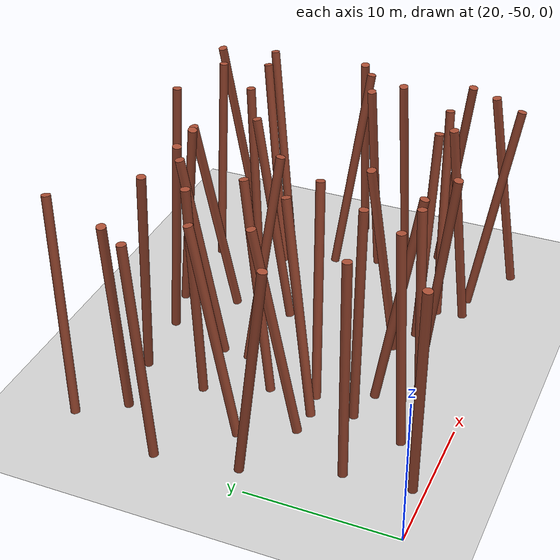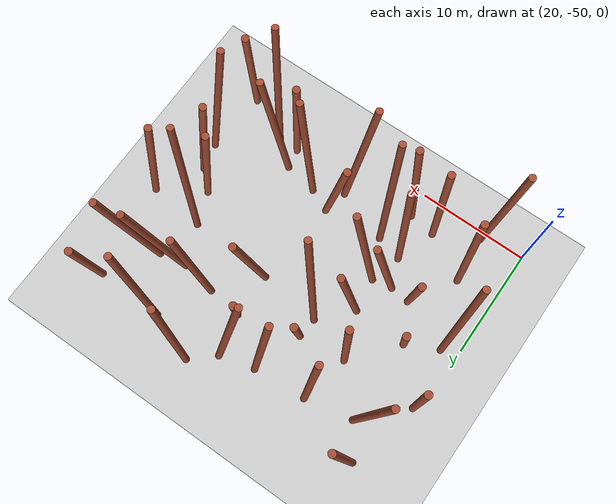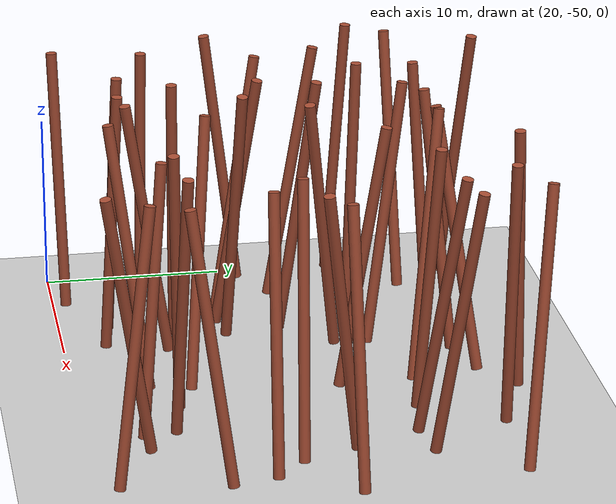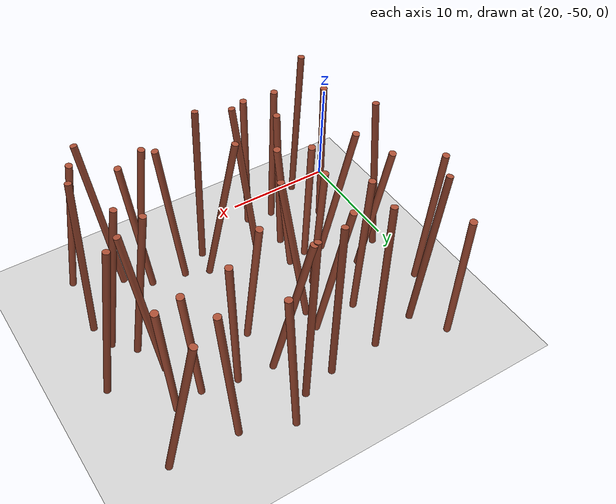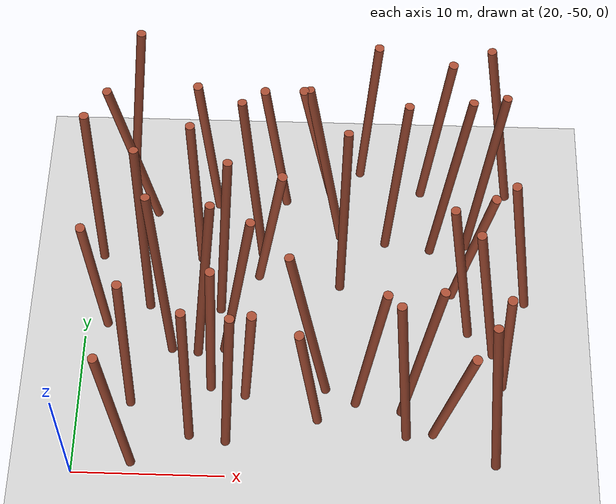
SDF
<sdf version="1.5">
 <world name="default">
  <include><uri>model://sun</uri></include>
  <include><uri>model://ground_plane</uri></include>
  <include><uri>model://asphalt_plane</uri><pose>0 0 -0.000001 0 0 0</pose></include>
  <model name="unit_cylinder_98">
   <pose>21.46546 -39.95861 7.70000 0.11935 0.00171 0.00000</pose>
   <gravity>0 0 0</gravity>
   <link name="link">
    <inertial>
     <mass>100</mass>
     <inertia><ixx>20</ixx><ixy>0</ixy><ixz>0</ixz><iyy>20</iyy><iyz>0</iyz><izz>20</izz></inertia>
    </inertial>
    <collision name="collision">
     <geometry><cylinder><radius>0.300</radius><length>15.000</length></cylinder></geometry>
    </collision>
    <visual name="visual">
     <geometry><cylinder><radius>0.300</radius><length>15.000</length></cylinder></geometry>
     <material>
      <script><name>Gazebo/Bricks</name><uri>file://media/materials/scripts/gazebo.material</uri></script>
     </material>
    </visual>
   </link>
   <static>1</static>
  </model>
  <model name="unit_cylinder_100">
   <pose>20.78882 -33.14455 7.70000 -0.07289 0.00973 0.00000</pose>
   <gravity>0 0 0</gravity>
   <link name="link">
    <inertial>
     <mass>100</mass>
     <inertia><ixx>20</ixx><ixy>0</ixy><ixz>0</ixz><iyy>20</iyy><iyz>0</iyz><izz>20</izz></inertia>
    </inertial>
    <collision name="collision">
     <geometry><cylinder><radius>0.300</radius><length>15.000</length></cylinder></geometry>
    </collision>
    <visual name="visual">
     <geometry><cylinder><radius>0.300</radius><length>15.000</length></cylinder></geometry>
     <material>
      <script><name>Gazebo/Bricks</name><uri>file://media/materials/scripts/gazebo.material</uri></script>
     </material>
    </visual>
    <kinematic>1</kinematic>
   </link>
   <static>0</static>
   <plugin name="dynamic_obstacle_motion_100" filename="libobstaclePathPlugin.so">
    <motion_type>proximity_linear</motion_type>
    <direction>0.979711618 0.200412438 -0.000000000</direction>
    <velocity>0.764305228</velocity>
    <activation_distance>20.000000000</activation_distance>
    <activation_model>iris</activation_model>
    <orientation>false</orientation>
    <marker_enabled>true</marker_enabled>
    <marker_id>100</marker_id>
    <marker_radius>0.300000000</marker_radius>
    <marker_height>15.000000000</marker_height>
    <marker_rate>20.0</marker_rate>
    <marker_topic>/uav_simulator/dynamic_obstacles</marker_topic>
    <marker_frame>map</marker_frame>
   </plugin>
  </model>
  <model name="unit_cylinder_111">
   <pose>23.47065 -49.44936 7.70000 0.02352 -0.05071 0.00000</pose>
   <gravity>0 0 0</gravity>
   <link name="link">
    <inertial>
     <mass>100</mass>
     <inertia><ixx>20</ixx><ixy>0</ixy><ixz>0</ixz><iyy>20</iyy><iyz>0</iyz><izz>20</izz></inertia>
    </inertial>
    <collision name="collision">
     <geometry><cylinder><radius>0.300</radius><length>15.000</length></cylinder></geometry>
    </collision>
    <visual name="visual">
     <geometry><cylinder><radius>0.300</radius><length>15.000</length></cylinder></geometry>
     <material>
      <script><name>Gazebo/Bricks</name><uri>file://media/materials/scripts/gazebo.material</uri></script>
     </material>
    </visual>
    <kinematic>1</kinematic>
   </link>
   <static>0</static>
   <plugin name="dynamic_obstacle_motion_111" filename="libobstaclePathPlugin.so">
    <motion_type>proximity_linear</motion_type>
    <direction>-0.628463334 -0.777839211 0.000000000</direction>
    <velocity>0.828039474</velocity>
    <activation_distance>20.000000000</activation_distance>
    <activation_model>iris</activation_model>
    <orientation>false</orientation>
    <marker_enabled>true</marker_enabled>
    <marker_id>111</marker_id>
    <marker_radius>0.300000000</marker_radius>
    <marker_height>15.000000000</marker_height>
    <marker_rate>20.0</marker_rate>
    <marker_topic>/uav_simulator/dynamic_obstacles</marker_topic>
    <marker_frame>map</marker_frame>
   </plugin>
  </model>
  <model name="unit_cylinder_112">
   <pose>23.76302 -44.86222 7.70000 -0.01518 0.03466 0.00000</pose>
   <gravity>0 0 0</gravity>
   <link name="link">
    <inertial>
     <mass>100</mass>
     <inertia><ixx>20</ixx><ixy>0</ixy><ixz>0</ixz><iyy>20</iyy><iyz>0</iyz><izz>20</izz></inertia>
    </inertial>
    <collision name="collision">
     <geometry><cylinder><radius>0.300</radius><length>15.000</length></cylinder></geometry>
    </collision>
    <visual name="visual">
     <geometry><cylinder><radius>0.300</radius><length>15.000</length></cylinder></geometry>
     <material>
      <script><name>Gazebo/Bricks</name><uri>file://media/materials/scripts/gazebo.material</uri></script>
     </material>
    </visual>
   </link>
   <static>1</static>
  </model>
  <model name="unit_cylinder_113">
   <pose>25.58461 -39.74711 7.70000 -0.16466 -0.05592 0.00000</pose>
   <gravity>0 0 0</gravity>
   <link name="link">
    <inertial>
     <mass>100</mass>
     <inertia><ixx>20</ixx><ixy>0</ixy><ixz>0</ixz><iyy>20</iyy><iyz>0</iyz><izz>20</izz></inertia>
    </inertial>
    <collision name="collision">
     <geometry><cylinder><radius>0.300</radius><length>15.000</length></cylinder></geometry>
    </collision>
    <visual name="visual">
     <geometry><cylinder><radius>0.300</radius><length>15.000</length></cylinder></geometry>
     <material>
      <script><name>Gazebo/Bricks</name><uri>file://media/materials/scripts/gazebo.material</uri></script>
     </material>
    </visual>
   </link>
   <static>1</static>
  </model>
  <model name="unit_cylinder_114">
   <pose>24.21159 -36.35976 7.70000 -0.17446 -0.00610 0.00000</pose>
   <gravity>0 0 0</gravity>
   <link name="link">
    <inertial>
     <mass>100</mass>
     <inertia><ixx>20</ixx><ixy>0</ixy><ixz>0</ixz><iyy>20</iyy><iyz>0</iyz><izz>20</izz></inertia>
    </inertial>
    <collision name="collision">
     <geometry><cylinder><radius>0.300</radius><length>15.000</length></cylinder></geometry>
    </collision>
    <visual name="visual">
     <geometry><cylinder><radius>0.300</radius><length>15.000</length></cylinder></geometry>
     <material>
      <script><name>Gazebo/Bricks</name><uri>file://media/materials/scripts/gazebo.material</uri></script>
     </material>
    </visual>
   </link>
   <static>1</static>
  </model>
  <model name="unit_cylinder_115">
   <pose>23.18014 -30.32712 7.70000 0.03770 -0.14207 0.00000</pose>
   <gravity>0 0 0</gravity>
   <link name="link">
    <inertial>
     <mass>100</mass>
     <inertia><ixx>20</ixx><ixy>0</ixy><ixz>0</ixz><iyy>20</iyy><iyz>0</iyz><izz>20</izz></inertia>
    </inertial>
    <collision name="collision">
     <geometry><cylinder><radius>0.300</radius><length>15.000</length></cylinder></geometry>
    </collision>
    <visual name="visual">
     <geometry><cylinder><radius>0.300</radius><length>15.000</length></cylinder></geometry>
     <material>
      <script><name>Gazebo/Bricks</name><uri>file://media/materials/scripts/gazebo.material</uri></script>
     </material>
    </visual>
    <kinematic>1</kinematic>
   </link>
   <static>0</static>
   <plugin name="dynamic_obstacle_motion_115" filename="libobstaclePathPlugin.so">
    <motion_type>proximity_linear</motion_type>
    <direction>0.863821956 0.503797210 0.000000000</direction>
    <velocity>0.594384243</velocity>
    <activation_distance>20.000000000</activation_distance>
    <activation_model>iris</activation_model>
    <orientation>false</orientation>
    <marker_enabled>true</marker_enabled>
    <marker_id>115</marker_id>
    <marker_radius>0.300000000</marker_radius>
    <marker_height>15.000000000</marker_height>
    <marker_rate>20.0</marker_rate>
    <marker_topic>/uav_simulator/dynamic_obstacles</marker_topic>
    <marker_frame>map</marker_frame>
   </plugin>
  </model>
  <model name="unit_cylinder_116">
   <pose>23.12170 -26.55927 7.70000 -0.09003 0.10611 0.00000</pose>
   <gravity>0 0 0</gravity>
   <link name="link">
    <inertial>
     <mass>100</mass>
     <inertia><ixx>20</ixx><ixy>0</ixy><ixz>0</ixz><iyy>20</iyy><iyz>0</iyz><izz>20</izz></inertia>
    </inertial>
    <collision name="collision">
     <geometry><cylinder><radius>0.300</radius><length>15.000</length></cylinder></geometry>
    </collision>
    <visual name="visual">
     <geometry><cylinder><radius>0.300</radius><length>15.000</length></cylinder></geometry>
     <material>
      <script><name>Gazebo/Bricks</name><uri>file://media/materials/scripts/gazebo.material</uri></script>
     </material>
    </visual>
   </link>
   <static>1</static>
  </model>
  <model name="unit_cylinder_126">
   <pose>27.70385 -46.90591 7.70000 -0.04997 0.02387 0.00000</pose>
   <gravity>0 0 0</gravity>
   <link name="link">
    <inertial>
     <mass>100</mass>
     <inertia><ixx>20</ixx><ixy>0</ixy><ixz>0</ixz><iyy>20</iyy><iyz>0</iyz><izz>20</izz></inertia>
    </inertial>
    <collision name="collision">
     <geometry><cylinder><radius>0.300</radius><length>15.000</length></cylinder></geometry>
    </collision>
    <visual name="visual">
     <geometry><cylinder><radius>0.300</radius><length>15.000</length></cylinder></geometry>
     <material>
      <script><name>Gazebo/Bricks</name><uri>file://media/materials/scripts/gazebo.material</uri></script>
     </material>
    </visual>
    <kinematic>1</kinematic>
   </link>
   <static>0</static>
   <plugin name="dynamic_obstacle_motion_126" filename="libobstaclePathPlugin.so">
    <motion_type>proximity_linear</motion_type>
    <direction>-0.409864256 -0.912146530 0.000000000</direction>
    <velocity>0.670095584</velocity>
    <activation_distance>20.000000000</activation_distance>
    <activation_model>iris</activation_model>
    <orientation>false</orientation>
    <marker_enabled>true</marker_enabled>
    <marker_id>126</marker_id>
    <marker_radius>0.300000000</marker_radius>
    <marker_height>15.000000000</marker_height>
    <marker_rate>20.0</marker_rate>
    <marker_topic>/uav_simulator/dynamic_obstacles</marker_topic>
    <marker_frame>map</marker_frame>
   </plugin>
  </model>
  <model name="unit_cylinder_127">
   <pose>29.08161 -43.71106 7.70000 0.00122 0.04421 0.00000</pose>
   <gravity>0 0 0</gravity>
   <link name="link">
    <inertial>
     <mass>100</mass>
     <inertia><ixx>20</ixx><ixy>0</ixy><ixz>0</ixz><iyy>20</iyy><iyz>0</iyz><izz>20</izz></inertia>
    </inertial>
    <collision name="collision">
     <geometry><cylinder><radius>0.300</radius><length>15.000</length></cylinder></geometry>
    </collision>
    <visual name="visual">
     <geometry><cylinder><radius>0.300</radius><length>15.000</length></cylinder></geometry>
     <material>
      <script><name>Gazebo/Bricks</name><uri>file://media/materials/scripts/gazebo.material</uri></script>
     </material>
    </visual>
   </link>
   <static>1</static>
  </model>
  <model name="unit_cylinder_128">
   <pose>28.43012 -40.07960 7.70000 -0.14767 0.09417 0.00000</pose>
   <gravity>0 0 0</gravity>
   <link name="link">
    <inertial>
     <mass>100</mass>
     <inertia><ixx>20</ixx><ixy>0</ixy><ixz>0</ixz><iyy>20</iyy><iyz>0</iyz><izz>20</izz></inertia>
    </inertial>
    <collision name="collision">
     <geometry><cylinder><radius>0.300</radius><length>15.000</length></cylinder></geometry>
    </collision>
    <visual name="visual">
     <geometry><cylinder><radius>0.300</radius><length>15.000</length></cylinder></geometry>
     <material>
      <script><name>Gazebo/Bricks</name><uri>file://media/materials/scripts/gazebo.material</uri></script>
     </material>
    </visual>
    <kinematic>1</kinematic>
   </link>
   <static>0</static>
   <plugin name="dynamic_obstacle_motion_128" filename="libobstaclePathPlugin.so">
    <motion_type>proximity_linear</motion_type>
    <direction>0.628241784 0.778018163 0.000000000</direction>
    <velocity>1.215040863</velocity>
    <activation_distance>20.000000000</activation_distance>
    <activation_model>iris</activation_model>
    <orientation>false</orientation>
    <marker_enabled>true</marker_enabled>
    <marker_id>128</marker_id>
    <marker_radius>0.300000000</marker_radius>
    <marker_height>15.000000000</marker_height>
    <marker_rate>20.0</marker_rate>
    <marker_topic>/uav_simulator/dynamic_obstacles</marker_topic>
    <marker_frame>map</marker_frame>
   </plugin>
  </model>
  <model name="unit_cylinder_129">
   <pose>29.56086 -36.82909 7.70000 -0.13146 0.06331 0.00000</pose>
   <gravity>0 0 0</gravity>
   <link name="link">
    <inertial>
     <mass>100</mass>
     <inertia><ixx>20</ixx><ixy>0</ixy><ixz>0</ixz><iyy>20</iyy><iyz>0</iyz><izz>20</izz></inertia>
    </inertial>
    <collision name="collision">
     <geometry><cylinder><radius>0.300</radius><length>15.000</length></cylinder></geometry>
    </collision>
    <visual name="visual">
     <geometry><cylinder><radius>0.300</radius><length>15.000</length></cylinder></geometry>
     <material>
      <script><name>Gazebo/Bricks</name><uri>file://media/materials/scripts/gazebo.material</uri></script>
     </material>
    </visual>
    <kinematic>1</kinematic>
   </link>
   <static>0</static>
   <plugin name="dynamic_obstacle_motion_129" filename="libobstaclePathPlugin.so">
    <motion_type>proximity_linear</motion_type>
    <direction>-0.977954617 0.208817543 -0.000000000</direction>
    <velocity>1.210055604</velocity>
    <activation_distance>20.000000000</activation_distance>
    <activation_model>iris</activation_model>
    <orientation>false</orientation>
    <marker_enabled>true</marker_enabled>
    <marker_id>129</marker_id>
    <marker_radius>0.300000000</marker_radius>
    <marker_height>15.000000000</marker_height>
    <marker_rate>20.0</marker_rate>
    <marker_topic>/uav_simulator/dynamic_obstacles</marker_topic>
    <marker_frame>map</marker_frame>
   </plugin>
  </model>
  <model name="unit_cylinder_130">
   <pose>27.55597 -33.45296 7.70000 -0.03416 -0.00270 0.00000</pose>
   <gravity>0 0 0</gravity>
   <link name="link">
    <inertial>
     <mass>100</mass>
     <inertia><ixx>20</ixx><ixy>0</ixy><ixz>0</ixz><iyy>20</iyy><iyz>0</iyz><izz>20</izz></inertia>
    </inertial>
    <collision name="collision">
     <geometry><cylinder><radius>0.300</radius><length>15.000</length></cylinder></geometry>
    </collision>
    <visual name="visual">
     <geometry><cylinder><radius>0.300</radius><length>15.000</length></cylinder></geometry>
     <material>
      <script><name>Gazebo/Bricks</name><uri>file://media/materials/scripts/gazebo.material</uri></script>
     </material>
    </visual>
    <kinematic>1</kinematic>
   </link>
   <static>0</static>
   <plugin name="dynamic_obstacle_motion_130" filename="libobstaclePathPlugin.so">
    <motion_type>proximity_linear</motion_type>
    <direction>-0.722094901 0.691794011 0.000000000</direction>
    <velocity>0.990476208</velocity>
    <activation_distance>20.000000000</activation_distance>
    <activation_model>iris</activation_model>
    <orientation>false</orientation>
    <marker_enabled>true</marker_enabled>
    <marker_id>130</marker_id>
    <marker_radius>0.300000000</marker_radius>
    <marker_height>15.000000000</marker_height>
    <marker_rate>20.0</marker_rate>
    <marker_topic>/uav_simulator/dynamic_obstacles</marker_topic>
    <marker_frame>map</marker_frame>
   </plugin>
  </model>
  <model name="unit_cylinder_131">
   <pose>28.17888 -29.63917 7.70000 0.05993 -0.04503 0.00000</pose>
   <gravity>0 0 0</gravity>
   <link name="link">
    <inertial>
     <mass>100</mass>
     <inertia><ixx>20</ixx><ixy>0</ixy><ixz>0</ixz><iyy>20</iyy><iyz>0</iyz><izz>20</izz></inertia>
    </inertial>
    <collision name="collision">
     <geometry><cylinder><radius>0.300</radius><length>15.000</length></cylinder></geometry>
    </collision>
    <visual name="visual">
     <geometry><cylinder><radius>0.300</radius><length>15.000</length></cylinder></geometry>
     <material>
      <script><name>Gazebo/Bricks</name><uri>file://media/materials/scripts/gazebo.material</uri></script>
     </material>
    </visual>
    <kinematic>1</kinematic>
   </link>
   <static>0</static>
   <plugin name="dynamic_obstacle_motion_131" filename="libobstaclePathPlugin.so">
    <motion_type>proximity_linear</motion_type>
    <direction>0.873723179 0.486423484 0.000000000</direction>
    <velocity>1.846512971</velocity>
    <activation_distance>20.000000000</activation_distance>
    <activation_model>iris</activation_model>
    <orientation>false</orientation>
    <marker_enabled>true</marker_enabled>
    <marker_id>131</marker_id>
    <marker_radius>0.300000000</marker_radius>
    <marker_height>15.000000000</marker_height>
    <marker_rate>20.0</marker_rate>
    <marker_topic>/uav_simulator/dynamic_obstacles</marker_topic>
    <marker_frame>map</marker_frame>
   </plugin>
  </model>
  <model name="unit_cylinder_141">
   <pose>30.33385 -47.23242 7.70000 -0.05505 0.05423 0.00000</pose>
   <gravity>0 0 0</gravity>
   <link name="link">
    <inertial>
     <mass>100</mass>
     <inertia><ixx>20</ixx><ixy>0</ixy><ixz>0</ixz><iyy>20</iyy><iyz>0</iyz><izz>20</izz></inertia>
    </inertial>
    <collision name="collision">
     <geometry><cylinder><radius>0.300</radius><length>15.000</length></cylinder></geometry>
    </collision>
    <visual name="visual">
     <geometry><cylinder><radius>0.300</radius><length>15.000</length></cylinder></geometry>
     <material>
      <script><name>Gazebo/Bricks</name><uri>file://media/materials/scripts/gazebo.material</uri></script>
     </material>
    </visual>
   </link>
   <static>1</static>
  </model>
  <model name="unit_cylinder_142">
   <pose>31.54116 -45.41845 7.70000 0.15194 0.06451 0.00000</pose>
   <gravity>0 0 0</gravity>
   <link name="link">
    <inertial>
     <mass>100</mass>
     <inertia><ixx>20</ixx><ixy>0</ixy><ixz>0</ixz><iyy>20</iyy><iyz>0</iyz><izz>20</izz></inertia>
    </inertial>
    <collision name="collision">
     <geometry><cylinder><radius>0.300</radius><length>15.000</length></cylinder></geometry>
    </collision>
    <visual name="visual">
     <geometry><cylinder><radius>0.300</radius><length>15.000</length></cylinder></geometry>
     <material>
      <script><name>Gazebo/Bricks</name><uri>file://media/materials/scripts/gazebo.material</uri></script>
     </material>
    </visual>
   </link>
   <static>1</static>
  </model>
  <model name="unit_cylinder_143">
   <pose>30.56734 -40.50067 7.70000 -0.04632 0.14338 0.00000</pose>
   <gravity>0 0 0</gravity>
   <link name="link">
    <inertial>
     <mass>100</mass>
     <inertia><ixx>20</ixx><ixy>0</ixy><ixz>0</ixz><iyy>20</iyy><iyz>0</iyz><izz>20</izz></inertia>
    </inertial>
    <collision name="collision">
     <geometry><cylinder><radius>0.300</radius><length>15.000</length></cylinder></geometry>
    </collision>
    <visual name="visual">
     <geometry><cylinder><radius>0.300</radius><length>15.000</length></cylinder></geometry>
     <material>
      <script><name>Gazebo/Bricks</name><uri>file://media/materials/scripts/gazebo.material</uri></script>
     </material>
    </visual>
    <kinematic>1</kinematic>
   </link>
   <static>0</static>
   <plugin name="dynamic_obstacle_motion_143" filename="libobstaclePathPlugin.so">
    <motion_type>proximity_linear</motion_type>
    <direction>0.268788628 -0.963199187 0.000000000</direction>
    <velocity>1.925402494</velocity>
    <activation_distance>20.000000000</activation_distance>
    <activation_model>iris</activation_model>
    <orientation>false</orientation>
    <marker_enabled>true</marker_enabled>
    <marker_id>143</marker_id>
    <marker_radius>0.300000000</marker_radius>
    <marker_height>15.000000000</marker_height>
    <marker_rate>20.0</marker_rate>
    <marker_topic>/uav_simulator/dynamic_obstacles</marker_topic>
    <marker_frame>map</marker_frame>
   </plugin>
  </model>
  <model name="unit_cylinder_144">
   <pose>32.51889 -35.93257 7.70000 0.11436 0.12398 0.00000</pose>
   <gravity>0 0 0</gravity>
   <link name="link">
    <inertial>
     <mass>100</mass>
     <inertia><ixx>20</ixx><ixy>0</ixy><ixz>0</ixz><iyy>20</iyy><iyz>0</iyz><izz>20</izz></inertia>
    </inertial>
    <collision name="collision">
     <geometry><cylinder><radius>0.300</radius><length>15.000</length></cylinder></geometry>
    </collision>
    <visual name="visual">
     <geometry><cylinder><radius>0.300</radius><length>15.000</length></cylinder></geometry>
     <material>
      <script><name>Gazebo/Bricks</name><uri>file://media/materials/scripts/gazebo.material</uri></script>
     </material>
    </visual>
    <kinematic>1</kinematic>
   </link>
   <static>0</static>
   <plugin name="dynamic_obstacle_motion_144" filename="libobstaclePathPlugin.so">
    <motion_type>proximity_linear</motion_type>
    <direction>-0.933921685 -0.357477672 0.000000000</direction>
    <velocity>1.693485734</velocity>
    <activation_distance>20.000000000</activation_distance>
    <activation_model>iris</activation_model>
    <orientation>false</orientation>
    <marker_enabled>true</marker_enabled>
    <marker_id>144</marker_id>
    <marker_radius>0.300000000</marker_radius>
    <marker_height>15.000000000</marker_height>
    <marker_rate>20.0</marker_rate>
    <marker_topic>/uav_simulator/dynamic_obstacles</marker_topic>
    <marker_frame>map</marker_frame>
   </plugin>
  </model>
  <model name="unit_cylinder_145">
   <pose>31.23109 -32.24915 7.70000 -0.13724 -0.07301 0.00000</pose>
   <gravity>0 0 0</gravity>
   <link name="link">
    <inertial>
     <mass>100</mass>
     <inertia><ixx>20</ixx><ixy>0</ixy><ixz>0</ixz><iyy>20</iyy><iyz>0</iyz><izz>20</izz></inertia>
    </inertial>
    <collision name="collision">
     <geometry><cylinder><radius>0.300</radius><length>15.000</length></cylinder></geometry>
    </collision>
    <visual name="visual">
     <geometry><cylinder><radius>0.300</radius><length>15.000</length></cylinder></geometry>
     <material>
      <script><name>Gazebo/Bricks</name><uri>file://media/materials/scripts/gazebo.material</uri></script>
     </material>
    </visual>
    <kinematic>1</kinematic>
   </link>
   <static>0</static>
   <plugin name="dynamic_obstacle_motion_145" filename="libobstaclePathPlugin.so">
    <motion_type>proximity_linear</motion_type>
    <direction>-0.890255677 0.455461117 -0.000000000</direction>
    <velocity>0.487204339</velocity>
    <activation_distance>20.000000000</activation_distance>
    <activation_model>iris</activation_model>
    <orientation>false</orientation>
    <marker_enabled>true</marker_enabled>
    <marker_id>145</marker_id>
    <marker_radius>0.300000000</marker_radius>
    <marker_height>15.000000000</marker_height>
    <marker_rate>20.0</marker_rate>
    <marker_topic>/uav_simulator/dynamic_obstacles</marker_topic>
    <marker_frame>map</marker_frame>
   </plugin>
  </model>
  <model name="unit_cylinder_146">
   <pose>32.68902 -29.56190 7.70000 0.10127 -0.07861 0.00000</pose>
   <gravity>0 0 0</gravity>
   <link name="link">
    <inertial>
     <mass>100</mass>
     <inertia><ixx>20</ixx><ixy>0</ixy><ixz>0</ixz><iyy>20</iyy><iyz>0</iyz><izz>20</izz></inertia>
    </inertial>
    <collision name="collision">
     <geometry><cylinder><radius>0.300</radius><length>15.000</length></cylinder></geometry>
    </collision>
    <visual name="visual">
     <geometry><cylinder><radius>0.300</radius><length>15.000</length></cylinder></geometry>
     <material>
      <script><name>Gazebo/Bricks</name><uri>file://media/materials/scripts/gazebo.material</uri></script>
     </material>
    </visual>
   </link>
   <static>1</static>
  </model>
  <model name="unit_cylinder_156">
   <pose>35.35012 -46.85439 7.70000 0.12218 -0.07286 0.00000</pose>
   <gravity>0 0 0</gravity>
   <link name="link">
    <inertial>
     <mass>100</mass>
     <inertia><ixx>20</ixx><ixy>0</ixy><ixz>0</ixz><iyy>20</iyy><iyz>0</iyz><izz>20</izz></inertia>
    </inertial>
    <collision name="collision">
     <geometry><cylinder><radius>0.300</radius><length>15.000</length></cylinder></geometry>
    </collision>
    <visual name="visual">
     <geometry><cylinder><radius>0.300</radius><length>15.000</length></cylinder></geometry>
     <material>
      <script><name>Gazebo/Bricks</name><uri>file://media/materials/scripts/gazebo.material</uri></script>
     </material>
    </visual>
   </link>
   <static>1</static>
  </model>
  <model name="unit_cylinder_157">
   <pose>35.21745 -43.12417 7.70000 -0.08115 -0.15726 0.00000</pose>
   <gravity>0 0 0</gravity>
   <link name="link">
    <inertial>
     <mass>100</mass>
     <inertia><ixx>20</ixx><ixy>0</ixy><ixz>0</ixz><iyy>20</iyy><iyz>0</iyz><izz>20</izz></inertia>
    </inertial>
    <collision name="collision">
     <geometry><cylinder><radius>0.300</radius><length>15.000</length></cylinder></geometry>
    </collision>
    <visual name="visual">
     <geometry><cylinder><radius>0.300</radius><length>15.000</length></cylinder></geometry>
     <material>
      <script><name>Gazebo/Bricks</name><uri>file://media/materials/scripts/gazebo.material</uri></script>
     </material>
    </visual>
   </link>
   <static>1</static>
  </model>
  <model name="unit_cylinder_158">
   <pose>37.29644 -34.59589 7.70000 -0.16003 0.01841 0.00000</pose>
   <gravity>0 0 0</gravity>
   <link name="link">
    <inertial>
     <mass>100</mass>
     <inertia><ixx>20</ixx><ixy>0</ixy><ixz>0</ixz><iyy>20</iyy><iyz>0</iyz><izz>20</izz></inertia>
    </inertial>
    <collision name="collision">
     <geometry><cylinder><radius>0.300</radius><length>15.000</length></cylinder></geometry>
    </collision>
    <visual name="visual">
     <geometry><cylinder><radius>0.300</radius><length>15.000</length></cylinder></geometry>
     <material>
      <script><name>Gazebo/Bricks</name><uri>file://media/materials/scripts/gazebo.material</uri></script>
     </material>
    </visual>
    <kinematic>1</kinematic>
   </link>
   <static>0</static>
   <plugin name="dynamic_obstacle_motion_158" filename="libobstaclePathPlugin.so">
    <motion_type>proximity_linear</motion_type>
    <direction>0.939588616 0.342305760 0.000000000</direction>
    <velocity>0.479827375</velocity>
    <activation_distance>20.000000000</activation_distance>
    <activation_model>iris</activation_model>
    <orientation>false</orientation>
    <marker_enabled>true</marker_enabled>
    <marker_id>158</marker_id>
    <marker_radius>0.300000000</marker_radius>
    <marker_height>15.000000000</marker_height>
    <marker_rate>20.0</marker_rate>
    <marker_topic>/uav_simulator/dynamic_obstacles</marker_topic>
    <marker_frame>map</marker_frame>
   </plugin>
  </model>
  <model name="unit_cylinder_159">
   <pose>36.03640 -30.90246 7.70000 -0.11036 -0.14861 0.00000</pose>
   <gravity>0 0 0</gravity>
   <link name="link">
    <inertial>
     <mass>100</mass>
     <inertia><ixx>20</ixx><ixy>0</ixy><ixz>0</ixz><iyy>20</iyy><iyz>0</iyz><izz>20</izz></inertia>
    </inertial>
    <collision name="collision">
     <geometry><cylinder><radius>0.300</radius><length>15.000</length></cylinder></geometry>
    </collision>
    <visual name="visual">
     <geometry><cylinder><radius>0.300</radius><length>15.000</length></cylinder></geometry>
     <material>
      <script><name>Gazebo/Bricks</name><uri>file://media/materials/scripts/gazebo.material</uri></script>
     </material>
    </visual>
    <kinematic>1</kinematic>
   </link>
   <static>0</static>
   <plugin name="dynamic_obstacle_motion_159" filename="libobstaclePathPlugin.so">
    <motion_type>proximity_linear</motion_type>
    <direction>0.982068259 0.188525688 0.000000000</direction>
    <velocity>1.879967132</velocity>
    <activation_distance>20.000000000</activation_distance>
    <activation_model>iris</activation_model>
    <orientation>false</orientation>
    <marker_enabled>true</marker_enabled>
    <marker_id>159</marker_id>
    <marker_radius>0.300000000</marker_radius>
    <marker_height>15.000000000</marker_height>
    <marker_rate>20.0</marker_rate>
    <marker_topic>/uav_simulator/dynamic_obstacles</marker_topic>
    <marker_frame>map</marker_frame>
   </plugin>
  </model>
  <model name="unit_cylinder_160">
   <pose>35.47061 -29.09119 7.70000 0.14546 -0.12262 0.00000</pose>
   <gravity>0 0 0</gravity>
   <link name="link">
    <inertial>
     <mass>100</mass>
     <inertia><ixx>20</ixx><ixy>0</ixy><ixz>0</ixz><iyy>20</iyy><iyz>0</iyz><izz>20</izz></inertia>
    </inertial>
    <collision name="collision">
     <geometry><cylinder><radius>0.300</radius><length>15.000</length></cylinder></geometry>
    </collision>
    <visual name="visual">
     <geometry><cylinder><radius>0.300</radius><length>15.000</length></cylinder></geometry>
     <material>
      <script><name>Gazebo/Bricks</name><uri>file://media/materials/scripts/gazebo.material</uri></script>
     </material>
    </visual>
    <kinematic>1</kinematic>
   </link>
   <static>0</static>
   <plugin name="dynamic_obstacle_motion_160" filename="libobstaclePathPlugin.so">
    <motion_type>proximity_linear</motion_type>
    <direction>-0.641968835 0.766730732 0.000000000</direction>
    <velocity>0.701630789</velocity>
    <activation_distance>20.000000000</activation_distance>
    <activation_model>iris</activation_model>
    <orientation>false</orientation>
    <marker_enabled>true</marker_enabled>
    <marker_id>160</marker_id>
    <marker_radius>0.300000000</marker_radius>
    <marker_height>15.000000000</marker_height>
    <marker_rate>20.0</marker_rate>
    <marker_topic>/uav_simulator/dynamic_obstacles</marker_topic>
    <marker_frame>map</marker_frame>
   </plugin>
  </model>
  <model name="unit_cylinder_167">
   <pose>41.22638 -46.33147 7.70000 -0.08497 -0.06742 0.00000</pose>
   <gravity>0 0 0</gravity>
   <link name="link">
    <inertial>
     <mass>100</mass>
     <inertia><ixx>20</ixx><ixy>0</ixy><ixz>0</ixz><iyy>20</iyy><iyz>0</iyz><izz>20</izz></inertia>
    </inertial>
    <collision name="collision">
     <geometry><cylinder><radius>0.300</radius><length>15.000</length></cylinder></geometry>
    </collision>
    <visual name="visual">
     <geometry><cylinder><radius>0.300</radius><length>15.000</length></cylinder></geometry>
     <material>
      <script><name>Gazebo/Bricks</name><uri>file://media/materials/scripts/gazebo.material</uri></script>
     </material>
    </visual>
    <kinematic>1</kinematic>
   </link>
   <static>0</static>
   <plugin name="dynamic_obstacle_motion_167" filename="libobstaclePathPlugin.so">
    <motion_type>proximity_linear</motion_type>
    <direction>0.793769334 0.608218912 0.000000000</direction>
    <velocity>0.533453228</velocity>
    <activation_distance>20.000000000</activation_distance>
    <activation_model>iris</activation_model>
    <orientation>false</orientation>
    <marker_enabled>true</marker_enabled>
    <marker_id>167</marker_id>
    <marker_radius>0.300000000</marker_radius>
    <marker_height>15.000000000</marker_height>
    <marker_rate>20.0</marker_rate>
    <marker_topic>/uav_simulator/dynamic_obstacles</marker_topic>
    <marker_frame>map</marker_frame>
   </plugin>
  </model>
  <model name="unit_cylinder_168">
   <pose>39.14030 -44.80004 7.70000 0.02123 0.10310 0.00000</pose>
   <gravity>0 0 0</gravity>
   <link name="link">
    <inertial>
     <mass>100</mass>
     <inertia><ixx>20</ixx><ixy>0</ixy><ixz>0</ixz><iyy>20</iyy><iyz>0</iyz><izz>20</izz></inertia>
    </inertial>
    <collision name="collision">
     <geometry><cylinder><radius>0.300</radius><length>15.000</length></cylinder></geometry>
    </collision>
    <visual name="visual">
     <geometry><cylinder><radius>0.300</radius><length>15.000</length></cylinder></geometry>
     <material>
      <script><name>Gazebo/Bricks</name><uri>file://media/materials/scripts/gazebo.material</uri></script>
     </material>
    </visual>
   </link>
   <static>1</static>
  </model>
  <model name="unit_cylinder_169">
   <pose>40.72970 -31.70631 7.70000 -0.05817 0.06436 0.00000</pose>
   <gravity>0 0 0</gravity>
   <link name="link">
    <inertial>
     <mass>100</mass>
     <inertia><ixx>20</ixx><ixy>0</ixy><ixz>0</ixz><iyy>20</iyy><iyz>0</iyz><izz>20</izz></inertia>
    </inertial>
    <collision name="collision">
     <geometry><cylinder><radius>0.300</radius><length>15.000</length></cylinder></geometry>
    </collision>
    <visual name="visual">
     <geometry><cylinder><radius>0.300</radius><length>15.000</length></cylinder></geometry>
     <material>
      <script><name>Gazebo/Bricks</name><uri>file://media/materials/scripts/gazebo.material</uri></script>
     </material>
    </visual>
    <kinematic>1</kinematic>
   </link>
   <static>0</static>
   <plugin name="dynamic_obstacle_motion_169" filename="libobstaclePathPlugin.so">
    <motion_type>proximity_linear</motion_type>
    <direction>-0.861085342 0.508460454 0.000000000</direction>
    <velocity>1.542043449</velocity>
    <activation_distance>20.000000000</activation_distance>
    <activation_model>iris</activation_model>
    <orientation>false</orientation>
    <marker_enabled>true</marker_enabled>
    <marker_id>169</marker_id>
    <marker_radius>0.300000000</marker_radius>
    <marker_height>15.000000000</marker_height>
    <marker_rate>20.0</marker_rate>
    <marker_topic>/uav_simulator/dynamic_obstacles</marker_topic>
    <marker_frame>map</marker_frame>
   </plugin>
  </model>
  <model name="unit_cylinder_170">
   <pose>38.86798 -26.44141 7.70000 0.03167 0.05659 0.00000</pose>
   <gravity>0 0 0</gravity>
   <link name="link">
    <inertial>
     <mass>100</mass>
     <inertia><ixx>20</ixx><ixy>0</ixy><ixz>0</ixz><iyy>20</iyy><iyz>0</iyz><izz>20</izz></inertia>
    </inertial>
    <collision name="collision">
     <geometry><cylinder><radius>0.300</radius><length>15.000</length></cylinder></geometry>
    </collision>
    <visual name="visual">
     <geometry><cylinder><radius>0.300</radius><length>15.000</length></cylinder></geometry>
     <material>
      <script><name>Gazebo/Bricks</name><uri>file://media/materials/scripts/gazebo.material</uri></script>
     </material>
    </visual>
   </link>
   <static>1</static>
  </model>
  <model name="unit_cylinder_178">
   <pose>44.24275 -47.90384 7.70000 0.14989 0.10479 0.00000</pose>
   <gravity>0 0 0</gravity>
   <link name="link">
    <inertial>
     <mass>100</mass>
     <inertia><ixx>20</ixx><ixy>0</ixy><ixz>0</ixz><iyy>20</iyy><iyz>0</iyz><izz>20</izz></inertia>
    </inertial>
    <collision name="collision">
     <geometry><cylinder><radius>0.300</radius><length>15.000</length></cylinder></geometry>
    </collision>
    <visual name="visual">
     <geometry><cylinder><radius>0.300</radius><length>15.000</length></cylinder></geometry>
     <material>
      <script><name>Gazebo/Bricks</name><uri>file://media/materials/scripts/gazebo.material</uri></script>
     </material>
    </visual>
   </link>
   <static>1</static>
  </model>
  <model name="unit_cylinder_179">
   <pose>42.32179 -44.92990 7.70000 -0.03627 0.12506 0.00000</pose>
   <gravity>0 0 0</gravity>
   <link name="link">
    <inertial>
     <mass>100</mass>
     <inertia><ixx>20</ixx><ixy>0</ixy><ixz>0</ixz><iyy>20</iyy><iyz>0</iyz><izz>20</izz></inertia>
    </inertial>
    <collision name="collision">
     <geometry><cylinder><radius>0.300</radius><length>15.000</length></cylinder></geometry>
    </collision>
    <visual name="visual">
     <geometry><cylinder><radius>0.300</radius><length>15.000</length></cylinder></geometry>
     <material>
      <script><name>Gazebo/Bricks</name><uri>file://media/materials/scripts/gazebo.material</uri></script>
     </material>
    </visual>
    <kinematic>1</kinematic>
   </link>
   <static>0</static>
   <plugin name="dynamic_obstacle_motion_179" filename="libobstaclePathPlugin.so">
    <motion_type>proximity_linear</motion_type>
    <direction>-0.724612543 -0.689156486 0.000000000</direction>
    <velocity>0.435469376</velocity>
    <activation_distance>20.000000000</activation_distance>
    <activation_model>iris</activation_model>
    <orientation>false</orientation>
    <marker_enabled>true</marker_enabled>
    <marker_id>179</marker_id>
    <marker_radius>0.300000000</marker_radius>
    <marker_height>15.000000000</marker_height>
    <marker_rate>20.0</marker_rate>
    <marker_topic>/uav_simulator/dynamic_obstacles</marker_topic>
    <marker_frame>map</marker_frame>
   </plugin>
  </model>
  <model name="unit_cylinder_180">
   <pose>44.92701 -39.05635 7.70000 -0.01497 -0.13049 0.00000</pose>
   <gravity>0 0 0</gravity>
   <link name="link">
    <inertial>
     <mass>100</mass>
     <inertia><ixx>20</ixx><ixy>0</ixy><ixz>0</ixz><iyy>20</iyy><iyz>0</iyz><izz>20</izz></inertia>
    </inertial>
    <collision name="collision">
     <geometry><cylinder><radius>0.300</radius><length>15.000</length></cylinder></geometry>
    </collision>
    <visual name="visual">
     <geometry><cylinder><radius>0.300</radius><length>15.000</length></cylinder></geometry>
     <material>
      <script><name>Gazebo/Bricks</name><uri>file://media/materials/scripts/gazebo.material</uri></script>
     </material>
    </visual>
   </link>
   <static>1</static>
  </model>
  <model name="unit_cylinder_181">
   <pose>45.62610 -37.12173 7.70000 0.12286 0.11039 0.00000</pose>
   <gravity>0 0 0</gravity>
   <link name="link">
    <inertial>
     <mass>100</mass>
     <inertia><ixx>20</ixx><ixy>0</ixy><ixz>0</ixz><iyy>20</iyy><iyz>0</iyz><izz>20</izz></inertia>
    </inertial>
    <collision name="collision">
     <geometry><cylinder><radius>0.300</radius><length>15.000</length></cylinder></geometry>
    </collision>
    <visual name="visual">
     <geometry><cylinder><radius>0.300</radius><length>15.000</length></cylinder></geometry>
     <material>
      <script><name>Gazebo/Bricks</name><uri>file://media/materials/scripts/gazebo.material</uri></script>
     </material>
    </visual>
   </link>
   <static>1</static>
  </model>
  <model name="unit_cylinder_182">
   <pose>44.30556 -31.73753 7.70000 -0.12721 0.12794 0.00000</pose>
   <gravity>0 0 0</gravity>
   <link name="link">
    <inertial>
     <mass>100</mass>
     <inertia><ixx>20</ixx><ixy>0</ixy><ixz>0</ixz><iyy>20</iyy><iyz>0</iyz><izz>20</izz></inertia>
    </inertial>
    <collision name="collision">
     <geometry><cylinder><radius>0.300</radius><length>15.000</length></cylinder></geometry>
    </collision>
    <visual name="visual">
     <geometry><cylinder><radius>0.300</radius><length>15.000</length></cylinder></geometry>
     <material>
      <script><name>Gazebo/Bricks</name><uri>file://media/materials/scripts/gazebo.material</uri></script>
     </material>
    </visual>
    <kinematic>1</kinematic>
   </link>
   <static>0</static>
   <plugin name="dynamic_obstacle_motion_182" filename="libobstaclePathPlugin.so">
    <motion_type>proximity_linear</motion_type>
    <direction>0.976699868 0.214609806 0.000000000</direction>
    <velocity>0.910993808</velocity>
    <activation_distance>20.000000000</activation_distance>
    <activation_model>iris</activation_model>
    <orientation>false</orientation>
    <marker_enabled>true</marker_enabled>
    <marker_id>182</marker_id>
    <marker_radius>0.300000000</marker_radius>
    <marker_height>15.000000000</marker_height>
    <marker_rate>20.0</marker_rate>
    <marker_topic>/uav_simulator/dynamic_obstacles</marker_topic>
    <marker_frame>map</marker_frame>
   </plugin>
  </model>
  <model name="unit_cylinder_183">
   <pose>43.38692 -27.87794 7.70000 0.00662 0.08503 0.00000</pose>
   <gravity>0 0 0</gravity>
   <link name="link">
    <inertial>
     <mass>100</mass>
     <inertia><ixx>20</ixx><ixy>0</ixy><ixz>0</ixz><iyy>20</iyy><iyz>0</iyz><izz>20</izz></inertia>
    </inertial>
    <collision name="collision">
     <geometry><cylinder><radius>0.300</radius><length>15.000</length></cylinder></geometry>
    </collision>
    <visual name="visual">
     <geometry><cylinder><radius>0.300</radius><length>15.000</length></cylinder></geometry>
     <material>
      <script><name>Gazebo/Bricks</name><uri>file://media/materials/scripts/gazebo.material</uri></script>
     </material>
    </visual>
   </link>
   <static>1</static>
  </model>
  <model name="unit_cylinder_192">
   <pose>46.90257 -47.93191 7.70000 -0.12922 -0.08404 0.00000</pose>
   <gravity>0 0 0</gravity>
   <link name="link">
    <inertial>
     <mass>100</mass>
     <inertia><ixx>20</ixx><ixy>0</ixy><ixz>0</ixz><iyy>20</iyy><iyz>0</iyz><izz>20</izz></inertia>
    </inertial>
    <collision name="collision">
     <geometry><cylinder><radius>0.300</radius><length>15.000</length></cylinder></geometry>
    </collision>
    <visual name="visual">
     <geometry><cylinder><radius>0.300</radius><length>15.000</length></cylinder></geometry>
     <material>
      <script><name>Gazebo/Bricks</name><uri>file://media/materials/scripts/gazebo.material</uri></script>
     </material>
    </visual>
    <kinematic>1</kinematic>
   </link>
   <static>0</static>
   <plugin name="dynamic_obstacle_motion_192" filename="libobstaclePathPlugin.so">
    <motion_type>proximity_linear</motion_type>
    <direction>0.099561741 -0.995031386 0.000000000</direction>
    <velocity>0.744286314</velocity>
    <activation_distance>20.000000000</activation_distance>
    <activation_model>iris</activation_model>
    <orientation>false</orientation>
    <marker_enabled>true</marker_enabled>
    <marker_id>192</marker_id>
    <marker_radius>0.300000000</marker_radius>
    <marker_height>15.000000000</marker_height>
    <marker_rate>20.0</marker_rate>
    <marker_topic>/uav_simulator/dynamic_obstacles</marker_topic>
    <marker_frame>map</marker_frame>
   </plugin>
  </model>
  <model name="unit_cylinder_193">
   <pose>47.61943 -44.12625 7.70000 0.12919 -0.06196 0.00000</pose>
   <gravity>0 0 0</gravity>
   <link name="link">
    <inertial>
     <mass>100</mass>
     <inertia><ixx>20</ixx><ixy>0</ixy><ixz>0</ixz><iyy>20</iyy><iyz>0</iyz><izz>20</izz></inertia>
    </inertial>
    <collision name="collision">
     <geometry><cylinder><radius>0.300</radius><length>15.000</length></cylinder></geometry>
    </collision>
    <visual name="visual">
     <geometry><cylinder><radius>0.300</radius><length>15.000</length></cylinder></geometry>
     <material>
      <script><name>Gazebo/Bricks</name><uri>file://media/materials/scripts/gazebo.material</uri></script>
     </material>
    </visual>
    <kinematic>1</kinematic>
   </link>
   <static>0</static>
   <plugin name="dynamic_obstacle_motion_193" filename="libobstaclePathPlugin.so">
    <motion_type>proximity_linear</motion_type>
    <direction>0.998996671 0.044784490 -0.000000000</direction>
    <velocity>1.141616859</velocity>
    <activation_distance>20.000000000</activation_distance>
    <activation_model>iris</activation_model>
    <orientation>false</orientation>
    <marker_enabled>true</marker_enabled>
    <marker_id>193</marker_id>
    <marker_radius>0.300000000</marker_radius>
    <marker_height>15.000000000</marker_height>
    <marker_rate>20.0</marker_rate>
    <marker_topic>/uav_simulator/dynamic_obstacles</marker_topic>
    <marker_frame>map</marker_frame>
   </plugin>
  </model>
  <model name="unit_cylinder_194">
   <pose>46.51384 -40.72499 7.70000 -0.00575 -0.13717 0.00000</pose>
   <gravity>0 0 0</gravity>
   <link name="link">
    <inertial>
     <mass>100</mass>
     <inertia><ixx>20</ixx><ixy>0</ixy><ixz>0</ixz><iyy>20</iyy><iyz>0</iyz><izz>20</izz></inertia>
    </inertial>
    <collision name="collision">
     <geometry><cylinder><radius>0.300</radius><length>15.000</length></cylinder></geometry>
    </collision>
    <visual name="visual">
     <geometry><cylinder><radius>0.300</radius><length>15.000</length></cylinder></geometry>
     <material>
      <script><name>Gazebo/Bricks</name><uri>file://media/materials/scripts/gazebo.material</uri></script>
     </material>
    </visual>
   </link>
   <static>1</static>
  </model>
  <model name="unit_cylinder_195">
   <pose>48.76799 -36.92088 7.70000 0.02328 -0.14102 0.00000</pose>
   <gravity>0 0 0</gravity>
   <link name="link">
    <inertial>
     <mass>100</mass>
     <inertia><ixx>20</ixx><ixy>0</ixy><ixz>0</ixz><iyy>20</iyy><iyz>0</iyz><izz>20</izz></inertia>
    </inertial>
    <collision name="collision">
     <geometry><cylinder><radius>0.300</radius><length>15.000</length></cylinder></geometry>
    </collision>
    <visual name="visual">
     <geometry><cylinder><radius>0.300</radius><length>15.000</length></cylinder></geometry>
     <material>
      <script><name>Gazebo/Bricks</name><uri>file://media/materials/scripts/gazebo.material</uri></script>
     </material>
    </visual>
   </link>
   <static>1</static>
  </model>
  <model name="unit_cylinder_196">
   <pose>46.59841 -31.33597 7.70000 -0.12510 0.10506 0.00000</pose>
   <gravity>0 0 0</gravity>
   <link name="link">
    <inertial>
     <mass>100</mass>
     <inertia><ixx>20</ixx><ixy>0</ixy><ixz>0</ixz><iyy>20</iyy><iyz>0</iyz><izz>20</izz></inertia>
    </inertial>
    <collision name="collision">
     <geometry><cylinder><radius>0.300</radius><length>15.000</length></cylinder></geometry>
    </collision>
    <visual name="visual">
     <geometry><cylinder><radius>0.300</radius><length>15.000</length></cylinder></geometry>
     <material>
      <script><name>Gazebo/Bricks</name><uri>file://media/materials/scripts/gazebo.material</uri></script>
     </material>
    </visual>
   </link>
   <static>1</static>
  </model>
  <model name="unit_cylinder_197">
   <pose>47.64331 -27.33458 7.70000 -0.08939 -0.15315 0.00000</pose>
   <gravity>0 0 0</gravity>
   <link name="link">
    <inertial>
     <mass>100</mass>
     <inertia><ixx>20</ixx><ixy>0</ixy><ixz>0</ixz><iyy>20</iyy><iyz>0</iyz><izz>20</izz></inertia>
    </inertial>
    <collision name="collision">
     <geometry><cylinder><radius>0.300</radius><length>15.000</length></cylinder></geometry>
    </collision>
    <visual name="visual">
     <geometry><cylinder><radius>0.300</radius><length>15.000</length></cylinder></geometry>
     <material>
      <script><name>Gazebo/Bricks</name><uri>file://media/materials/scripts/gazebo.material</uri></script>
     </material>
    </visual>
    <kinematic>1</kinematic>
   </link>
   <static>0</static>
   <plugin name="dynamic_obstacle_motion_197" filename="libobstaclePathPlugin.so">
    <motion_type>proximity_linear</motion_type>
    <direction>0.286800412 0.957990357 0.000000000</direction>
    <velocity>0.861277843</velocity>
    <activation_distance>20.000000000</activation_distance>
    <activation_model>iris</activation_model>
    <orientation>false</orientation>
    <marker_enabled>true</marker_enabled>
    <marker_id>197</marker_id>
    <marker_radius>0.300000000</marker_radius>
    <marker_height>15.000000000</marker_height>
    <marker_rate>20.0</marker_rate>
    <marker_topic>/uav_simulator/dynamic_obstacles</marker_topic>
    <marker_frame>map</marker_frame>
   </plugin>
  </model>
 </world>
</sdf>
